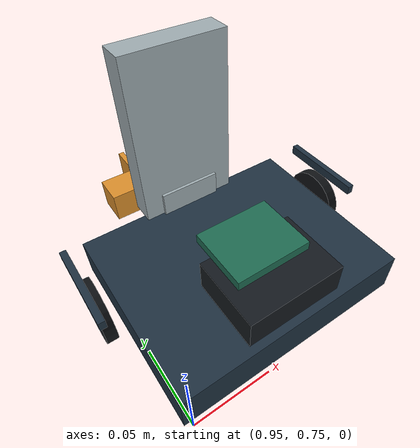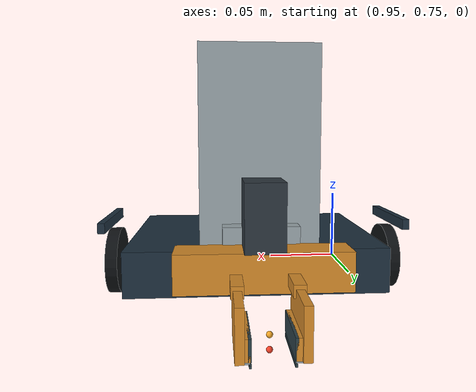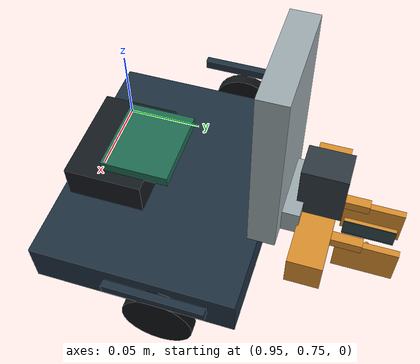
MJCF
<mujoco><compiler angle="radian" /><worldbody><body name="competition_robot" pos="1.020 .825 .020"><freejoint name="competition_robot_free" /><geom name="robot_comp_deck" contype="4" conaffinity="3" condim="3" friction=".3 .0001 .00001" solref=".001 1" solimp=".98 .999 .0001" type="box" size=".075 .060 .013" pos="0 -.015 .001" mass=".400" rgba=".12 .19 .25 1" /><geom name="robot_comp_battery" contype="4" conaffinity="3" condim="3" friction=".3 .0001 .00001" solref=".001 1" solimp=".98 .999 .0001" type="box" size=".031 .023 .010" pos="0 -.047 .024" mass=".165" rgba=".08 .10 .12 1" /><geom name="robot_comp_controller" contype="4" conaffinity="3" condim="3" friction=".3 .0001 .00001" solref=".001 1" solimp=".98 .999 .0001" type="box" size=".024 .020 .003" pos="0 -.030 .037" mass=".025" rgba=".12 .42 .32 1" /><geom name="robot_comp_mast" contype="4" conaffinity="3" condim="3" friction=".3 .0001 .00001" solref=".001 1" solimp=".98 .999 .0001" type="box" size=".032 .008 .055" pos="0 .047 .070" mass=".070" rgba=".62 .67 .69 1" /><geom name="robot_comp_guard_-1" contype="4" conaffinity="3" condim="3" friction=".3 .0001 .00001" solref=".001 1" solimp=".98 .999 .0001" type="box" size=".002 .028 .003" pos="-0.088 0.005 0.025" mass="0" rgba=".12 .19 .25 1" /><geom name="robot_comp_guard_1" contype="4" conaffinity="3" condim="3" friction=".3 .0001 .00001" solref=".001 1" solimp=".98 .999 .0001" type="box" size=".002 .028 .003" pos="0.088 0.005 0.025" mass="0" rgba=".12 .19 .25 1" /><body name="comp_wheel_left_body" pos="-0.085 0.005 0"><joint name="comp_wheel_left" type="hinge" axis="1 0 0" damping=".00005" frictionloss=".00015" armature=".000001" /><geom name="robot_comp_wheel_left" contype="4" conaffinity="3" condim="6" friction=".85 .0001 .00001" solref=".003 1" solimp=".90 .99 .0003" type="cylinder" size=".020 .0035" quat=".707106781187 0 .707106781187 0" mass=".012" rgba=".06 .07 .08 1" /></body><body name="comp_wheel_right_body" pos="0.085 0.005 0"><joint name="comp_wheel_right" type="hinge" axis="1 0 0" damping=".00005" frictionloss=".00015" armature=".000001" /><geom name="robot_comp_wheel_right" contype="4" conaffinity="3" condim="6" friction=".85 .0001 .00001" solref=".003 1" solimp=".90 .99 .0003" type="cylinder" size=".020 .0035" quat=".707106781187 0 .707106781187 0" mass=".012" rgba=".06 .07 .08 1" /></body><body name="comp_caster_body" pos="0 -.055 -.014"><joint name="comp_caster_ball" type="ball" damping=".000001" /><geom name="robot_comp_caster" contype="4" conaffinity="3" condim="6" friction=".2 .00001 .000001" solref=".001 1" solimp=".98 .999 .0001" type="sphere" size=".006" mass=".012" rgba=".65 .67 .70 1" /></body><body name="comp_lift_body" pos="0 .105 0"><joint name="comp_lift" type="slide" axis="0 0 1" limited="true" range="0 .080" damping=".8" frictionloss=".08" armature=".002" solreflimit=".001 1" solimplimit=".99 .999 .0001" /><geom name="robot_comp_crossbar" contype="4" conaffinity="3" condim="3" friction=".3 .0001 .00001" solref=".001 1" solimp=".98 .999 .0001" type="box" size=".044 .010 .010" pos="0 -.031 .012" mass=".040" rgba=".86 .56 .17 1" /><geom name="robot_comp_lift_servo" contype="4" conaffinity="3" condim="3" friction=".3 .0001 .00001" solref=".001 1" solimp=".98 .999 .0001" type="box" size=".010 .013 .017" pos="0 -.031 .039" mass=".020" rgba=".18 .22 .25 1" /><geom name="robot_comp_guide_carriage" contype="4" conaffinity="3" condim="3" friction=".3 .0001 .00001" solref=".001 1" solimp=".98 .999 .0001" type="box" size=".020 .014 .008" pos="0 -.054 .023" mass="0" rgba=".62 .67 .69 1" /><site name="gripper_center" pos="0 0 -.0159" size=".0015" rgba=".95 .25 .15 1" /><site name="gripper_upper_center" pos="0 0 -.009" size=".0015" rgba=".95 .65 .15 1" /><body name="comp_jaw_left_body" pos="-0.012 0 0"><joint name="comp_jaw_left" type="slide" axis="-1 0 0" limited="true" range="0 .025" damping=".15" armature=".0001" /><inertial pos="0 0 -.004" mass=".022" diaginertia=".000003 .000002 .000003" /><geom name="robot_comp_finger_left" contype="4" conaffinity="3" condim="3" friction=".3 .0001 .00001" solref=".001 1" solimp=".98 .999 .0001" type="box" size=".002 .018 .012" pos="-0.002 0 -0.002" mass="0" rgba=".86 .56 .17 1" /><geom name="robot_comp_slider_link_left" contype="4" conaffinity="3" condim="3" friction=".3 .0001 .00001" solref=".001 1" solimp=".98 .999 .0001" type="box" size=".003 .017 .003" pos="-0.002 -0.02 0.009" mass="0" rgba=".86 .56 .17 1" /><geom name="robot_comp_pad_left_sample" contype="4" conaffinity="3" condim="3" friction=".7 .00005 .000005" solref=".003 1" solimp=".90 .99 .0003" type="box" size=".0005 .016 .0007" pos="0.0025 0 -0.0159" mass="0" rgba=".18 .26 .29 1" /><geom name="robot_comp_sample_pad_support_left" contype="4" conaffinity="3" condim="3" friction=".3 .0001 .00001" solref=".001 1" solimp=".98 .999 .0001" type="box" size=".0015 .015 .0016" pos="0.001 0 -0.0136" mass="0" rgba=".62 .67 .69 1" /><geom name="robot_comp_upper_pad_support_left" contype="4" conaffinity="3" condim="3" friction=".3 .0001 .00001" solref=".001 1" solimp=".98 .999 .0001" type="box" size=".002 .016 .005" pos="0.0005 0 -0.009" mass="0" rgba=".86 .56 .17 1" /><geom name="robot_comp_pad_left_upper" contype="4" conaffinity="3" condim="3" friction=".7 .00005 .000005" solref=".003 1" solimp=".90 .99 .0003" type="box" size=".0007 .016 .005" pos="0.0023 0 -0.009" mass="0" rgba=".18 .26 .29 1" /></body><body name="comp_jaw_right_body" pos="0.012 0 0"><joint name="comp_jaw_right" type="slide" axis="1 0 0" limited="true" range="0 .025" damping=".15" armature=".0001" /><inertial pos="0 0 -.004" mass=".022" diaginertia=".000003 .000002 .000003" /><geom name="robot_comp_finger_right" contype="4" conaffinity="3" condim="3" friction=".3 .0001 .00001" solref=".001 1" solimp=".98 .999 .0001" type="box" size=".002 .018 .012" pos="0.002 0 -0.002" mass="0" rgba=".86 .56 .17 1" /><geom name="robot_comp_slider_link_right" contype="4" conaffinity="3" condim="3" friction=".3 .0001 .00001" solref=".001 1" solimp=".98 .999 .0001" type="box" size=".003 .017 .003" pos="0.002 -0.02 0.009" mass="0" rgba=".86 .56 .17 1" /><geom name="robot_comp_pad_right_sample" contype="4" conaffinity="3" condim="3" friction=".7 .00005 .000005" solref=".003 1" solimp=".90 .99 .0003" type="box" size=".0005 .016 .0007" pos="-0.0025 0 -0.0159" mass="0" rgba=".18 .26 .29 1" /><geom name="robot_comp_sample_pad_support_right" contype="4" conaffinity="3" condim="3" friction=".3 .0001 .00001" solref=".001 1" solimp=".98 .999 .0001" type="box" size=".0015 .015 .0016" pos="-0.001 0 -0.0136" mass="0" rgba=".62 .67 .69 1" /><geom name="robot_comp_upper_pad_support_right" contype="4" conaffinity="3" condim="3" friction=".3 .0001 .00001" solref=".001 1" solimp=".98 .999 .0001" type="box" size=".002 .016 .005" pos="-0.0005 0 -0.009" mass="0" rgba=".86 .56 .17 1" /><geom name="robot_comp_pad_right_upper" contype="4" conaffinity="3" condim="3" friction=".7 .00005 .000005" solref=".003 1" solimp=".90 .99 .0003" type="box" size=".0007 .016 .005" pos="-0.0023 0 -0.009" mass="0" rgba=".18 .26 .29 1" /></body></body><site name="comp_imu" pos="0 0 0" size=".002" rgba="0 0 0 0" /></body></worldbody><actuator><motor name="comp_motor_left" joint="comp_wheel_left" gear="1" ctrllimited="true" ctrlrange="-0.025 0.025" forcelimited="true" forcerange="-0.025 0.025" /><motor name="comp_motor_right" joint="comp_wheel_right" gear="1" ctrllimited="true" ctrlrange="-0.025 0.025" forcelimited="true" forcerange="-0.025 0.025" /><position name="comp_lift_motor" joint="comp_lift" kp="800" kv="8" ctrllimited="true" ctrlrange="0 .080" forcelimited="true" forcerange="-4 4" /><position name="comp_grip_motor" joint="comp_jaw_left" kp="2000" kv="6" ctrllimited="true" ctrlrange="0 .025" forcelimited="true" forcerange="-2 2" /></actuator><sensor><jointpos name="comp_encoder_left" joint="comp_wheel_left" /><jointvel name="comp_speed_left" joint="comp_wheel_left" /><jointpos name="comp_encoder_right" joint="comp_wheel_right" /><jointvel name="comp_speed_right" joint="comp_wheel_right" /><jointpos name="comp_lift_position" joint="comp_lift" /><jointpos name="comp_jaw_left_position" joint="comp_jaw_left" /><jointpos name="comp_jaw_right_position" joint="comp_jaw_right" /><framepos name="comp_position" objtype="body" objname="competition_robot" /><framequat name="comp_orientation" objtype="body" objname="competition_robot" /><gyro name="comp_gyro" site="comp_imu" /></sensor><equality><joint name="comp_jaw_coupling" joint1="comp_jaw_left" joint2="comp_jaw_right" polycoef="0 1 0 0 0" solref=".001 1" solimp=".99 .999 .00001" /></equality></mujoco>
